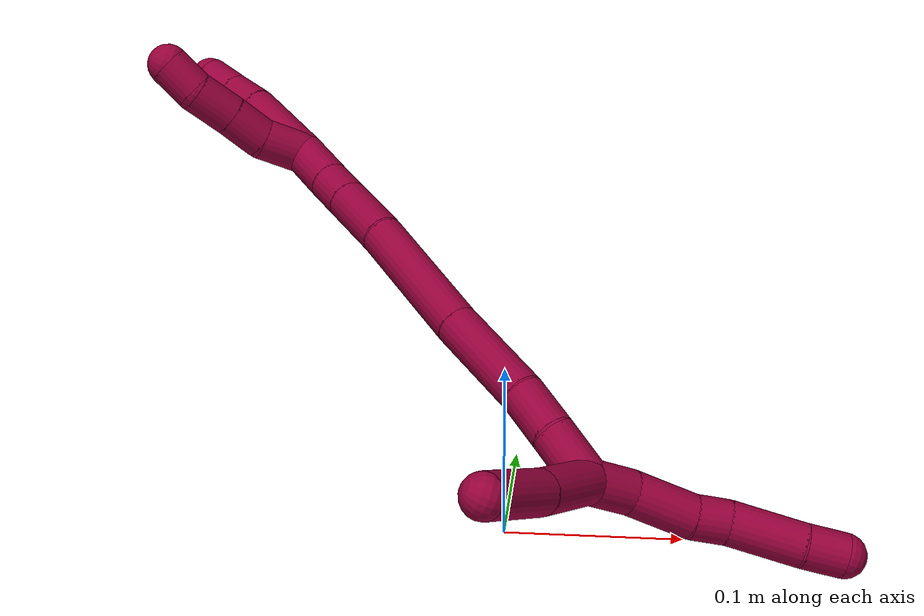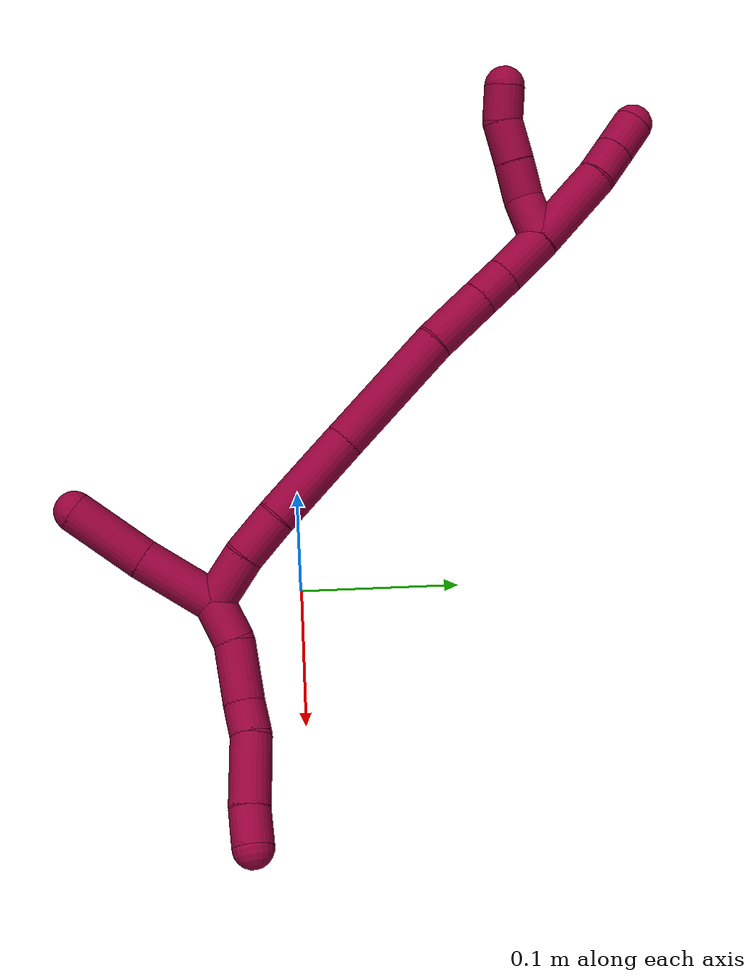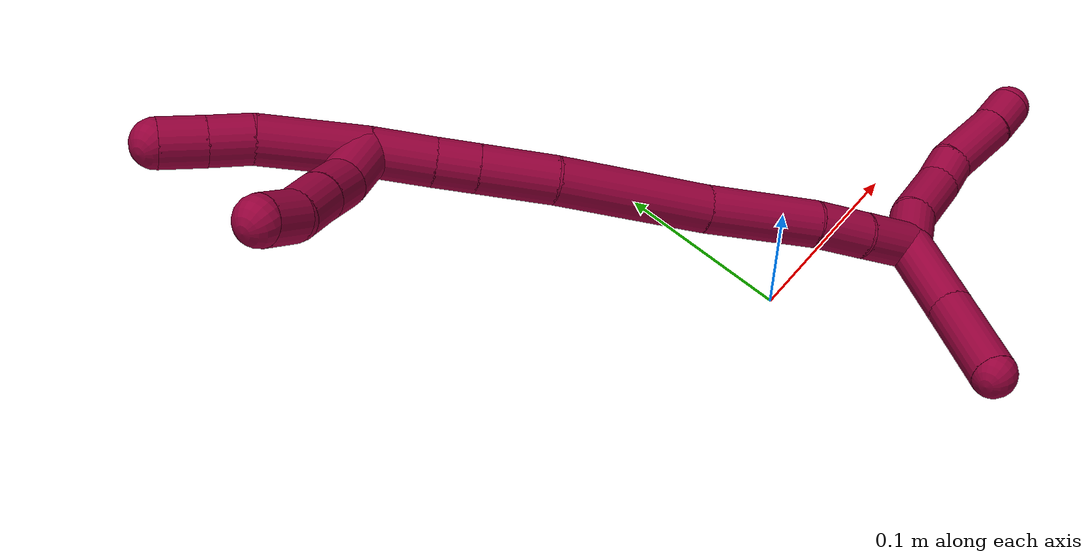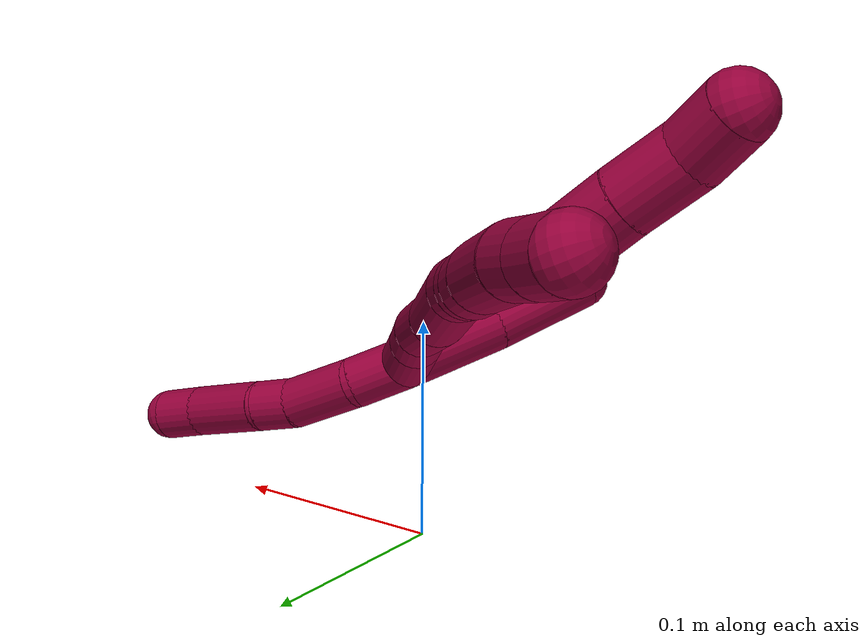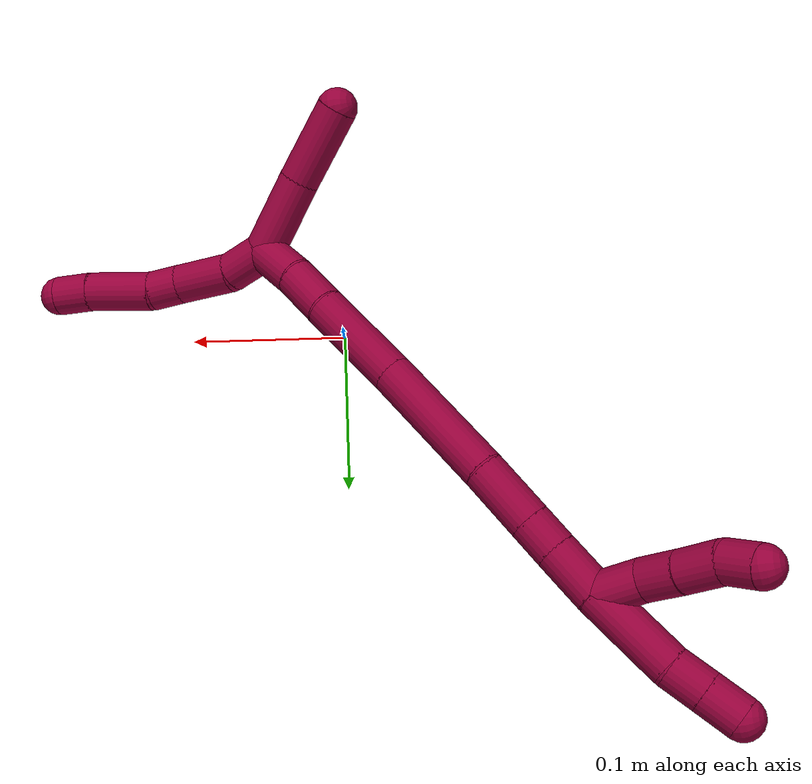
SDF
<sdf version="1.7">
 <world name="default">
  <model name="8">
   <static>0</static>
   <link name="8">
    <collision name="collision-cylinder-e_1_2_8">
     <pose>-0.003685 0.001449 -0.012914 -3.02982 -0.276327 2.37655</pose>
     <geometry><cylinder><radius>0.0125</radius><length>0.027015</length></cylinder></geometry>
     <surface>
      <friction><ode><mu>1.16</mu><mu2>1.16</mu2><slip1>0</slip1><slip2>0</slip2></ode></friction>
      <contact><ode><kp>1e+06</kp><kd>1</kd><max_vel>0</max_vel><min_depth>0.001</min_depth></ode></contact>
     </surface>
    </collision>
    <visual name="visual-cylinder-e_1_2_8">
     <pose>-0.003685 0.001449 -0.012914 -3.02982 -0.276327 2.37655</pose>
     <geometry><cylinder><radius>0.0125</radius><length>0.027015</length></cylinder></geometry>
     <material><ambient>0.584314 0 0.227451 1</ambient></material>
    </visual>
    <collision name="collision-cylinder-e_2_8_9">
     <pose>-0.007169 0.002942 -0.044473 -3.13929 0.010818 -2.72272</pose>
     <geometry><cylinder><radius>0.0125</radius><length>0.037293</length></cylinder></geometry>
     <surface>
      <friction><ode><mu>1.16</mu><mu2>1.16</mu2><slip1>0</slip1><slip2>0</slip2></ode></friction>
      <contact><ode><kp>1e+06</kp><kd>1</kd><max_vel>0</max_vel><min_depth>0.001</min_depth></ode></contact>
     </surface>
    </collision>
    <visual name="visual-cylinder-e_2_8_9">
     <pose>-0.007169 0.002942 -0.044473 -3.13929 0.010818 -2.72272</pose>
     <geometry><cylinder><radius>0.0125</radius><length>0.037293</length></cylinder></geometry>
     <material><ambient>0.584314 0 0.227451 1</ambient></material>
    </visual>
    <collision name="collision-cylinder-e_3_9_10">
     <pose>-0.006478 0.005098 -0.072964 -2.93013 0.048521 -0.449551</pose>
     <geometry><cylinder><radius>0.0125</radius><length>0.020163</length></cylinder></geometry>
     <surface>
      <friction><ode><mu>1.16</mu><mu2>1.16</mu2><slip1>0</slip1><slip2>0</slip2></ode></friction>
      <contact><ode><kp>1e+06</kp><kd>1</kd><max_vel>0</max_vel><min_depth>0.001</min_depth></ode></contact>
     </surface>
    </collision>
    <visual name="visual-cylinder-e_3_9_10">
     <pose>-0.006478 0.005098 -0.072964 -2.93013 0.048521 -0.449551</pose>
     <geometry><cylinder><radius>0.0125</radius><length>0.020163</length></cylinder></geometry>
     <material><ambient>0.584314 0 0.227451 1</ambient></material>
    </visual>
    <collision name="collision-cylinder-e_4_10_11">
     <pose>-0.00092 0.008962 -0.103459 -3.05704 0.239892 -2.46649</pose>
     <geometry><cylinder><radius>0.0125</radius><length>0.042668</length></cylinder></geometry>
     <surface>
      <friction><ode><mu>1.16</mu><mu2>1.16</mu2><slip1>0</slip1><slip2>0</slip2></ode></friction>
      <contact><ode><kp>1e+06</kp><kd>1</kd><max_vel>0</max_vel><min_depth>0.001</min_depth></ode></contact>
     </surface>
    </collision>
    <visual name="visual-cylinder-e_4_10_11">
     <pose>-0.00092 0.008962 -0.103459 -3.05704 0.239892 -2.46649</pose>
     <geometry><cylinder><radius>0.0125</radius><length>0.042668</length></cylinder></geometry>
     <material><ambient>0.584314 0 0.227451 1</ambient></material>
    </visual>
    <collision name="collision-cylinder-e_5_11_6">
     <pose>0.005724 0.012243 -0.135325 -3.00593 0.138224 -1.58956</pose>
     <geometry><cylinder><radius>0.0125</radius><length>0.02286</length></cylinder></geometry>
     <surface>
      <friction><ode><mu>1.16</mu><mu2>1.16</mu2><slip1>0</slip1><slip2>0</slip2></ode></friction>
      <contact><ode><kp>1e+06</kp><kd>1</kd><max_vel>0</max_vel><min_depth>0.001</min_depth></ode></contact>
     </surface>
    </collision>
    <visual name="visual-cylinder-e_5_11_6">
     <pose>0.005724 0.012243 -0.135325 -3.00593 0.138224 -1.58956</pose>
     <geometry><cylinder><radius>0.0125</radius><length>0.02286</length></cylinder></geometry>
     <material><ambient>0.584314 0 0.227451 1</ambient></material>
    </visual>
    <collision name="collision-cylinder-e_1_2_12">
     <pose>0.017351 -0.007128 0.016233 0.413764 0.774639 0.170818</pose>
     <geometry><cylinder><radius>0.0125</radius><length>0.049613</length></cylinder></geometry>
     <surface>
      <friction><ode><mu>1.16</mu><mu2>1.16</mu2><slip1>0</slip1><slip2>0</slip2></ode></friction>
      <contact><ode><kp>1e+06</kp><kd>1</kd><max_vel>0</max_vel><min_depth>0.001</min_depth></ode></contact>
     </surface>
    </collision>
    <visual name="visual-cylinder-e_1_2_12">
     <pose>0.017351 -0.007128 0.016233 0.413764 0.774639 0.170818</pose>
     <geometry><cylinder><radius>0.0125</radius><length>0.049613</length></cylinder></geometry>
     <material><ambient>0.584314 0 0.227451 1</ambient></material>
    </visual>
    <collision name="collision-cylinder-e_2_12_5">
     <pose>0.051933 -0.019733 0.05001 0.302583 0.753154 0.120432</pose>
     <geometry><cylinder><radius>0.0125</radius><length>0.050387</length></cylinder></geometry>
     <surface>
      <friction><ode><mu>1.16</mu><mu2>1.16</mu2><slip1>0</slip1><slip2>0</slip2></ode></friction>
      <contact><ode><kp>1e+06</kp><kd>1</kd><max_vel>0</max_vel><min_depth>0.001</min_depth></ode></contact>
     </surface>
    </collision>
    <visual name="visual-cylinder-e_2_12_5">
     <pose>0.051933 -0.019733 0.05001 0.302583 0.753154 0.120432</pose>
     <geometry><cylinder><radius>0.0125</radius><length>0.050387</length></cylinder></geometry>
     <material><ambient>0.584314 0 0.227451 1</ambient></material>
    </visual>
    <collision name="collision-cylinder-e_1_2_13">
     <pose>-0.008269 0.008353 0.011526 -0.627127 -0.526261 0.174254</pose>
     <geometry><cylinder><radius>0.0125</radius><length>0.032924</length></cylinder></geometry>
     <surface>
      <friction><ode><mu>1.16</mu><mu2>1.16</mu2><slip1>0</slip1><slip2>0</slip2></ode></friction>
      <contact><ode><kp>1e+06</kp><kd>1</kd><max_vel>0</max_vel><min_depth>0.001</min_depth></ode></contact>
     </surface>
    </collision>
    <visual name="visual-cylinder-e_1_2_13">
     <pose>-0.008269 0.008353 0.011526 -0.627127 -0.526261 0.174254</pose>
     <geometry><cylinder><radius>0.0125</radius><length>0.032924</length></cylinder></geometry>
     <material><ambient>0.584314 0 0.227451 1</ambient></material>
    </visual>
    <collision name="collision-cylinder-e_2_13_14">
     <pose>-0.025774 0.023775 0.032451 -0.644874 -0.665763 0.230007</pose>
     <geometry><cylinder><radius>0.0125</radius><length>0.029908</length></cylinder></geometry>
     <surface>
      <friction><ode><mu>1.16</mu><mu2>1.16</mu2><slip1>0</slip1><slip2>0</slip2></ode></friction>
      <contact><ode><kp>1e+06</kp><kd>1</kd><max_vel>0</max_vel><min_depth>0.001</min_depth></ode></contact>
     </surface>
    </collision>
    <visual name="visual-cylinder-e_2_13_14">
     <pose>-0.025774 0.023775 0.032451 -0.644874 -0.665763 0.230007</pose>
     <geometry><cylinder><radius>0.0125</radius><length>0.029908</length></cylinder></geometry>
     <material><ambient>0.584314 0 0.227451 1</ambient></material>
    </visual>
    <collision name="collision-cylinder-e_3_14_15">
     <pose>-0.056282 0.042439 0.061061 -0.542983 -0.758696 0.22104</pose>
     <geometry><cylinder><radius>0.0125</radius><length>0.061838</length></cylinder></geometry>
     <surface>
      <friction><ode><mu>1.16</mu><mu2>1.16</mu2><slip1>0</slip1><slip2>0</slip2></ode></friction>
      <contact><ode><kp>1e+06</kp><kd>1</kd><max_vel>0</max_vel><min_depth>0.001</min_depth></ode></contact>
     </surface>
    </collision>
    <visual name="visual-cylinder-e_3_14_15">
     <pose>-0.056282 0.042439 0.061061 -0.542983 -0.758696 0.22104</pose>
     <geometry><cylinder><radius>0.0125</radius><length>0.061838</length></cylinder></geometry>
     <material><ambient>0.584314 0 0.227451 1</ambient></material>
    </visual>
    <collision name="collision-cylinder-e_4_15_16">
     <pose>-0.104999 0.071311 0.10513 -0.607433 -0.736433 0.240669</pose>
     <geometry><cylinder><radius>0.0125</radius><length>0.081724</length></cylinder></geometry>
     <surface>
      <friction><ode><mu>1.16</mu><mu2>1.16</mu2><slip1>0</slip1><slip2>0</slip2></ode></friction>
      <contact><ode><kp>1e+06</kp><kd>1</kd><max_vel>0</max_vel><min_depth>0.001</min_depth></ode></contact>
     </surface>
    </collision>
    <visual name="visual-cylinder-e_4_15_16">
     <pose>-0.104999 0.071311 0.10513 -0.607433 -0.736433 0.240669</pose>
     <geometry><cylinder><radius>0.0125</radius><length>0.081724</length></cylinder></geometry>
     <material><ambient>0.584314 0 0.227451 1</ambient></material>
    </visual>
    <collision name="collision-cylinder-e_5_16_17">
     <pose>-0.147218 0.095513 0.141142 -0.555455 -0.844382 0.254745</pose>
     <geometry><cylinder><radius>0.0125</radius><length>0.039529</length></cylinder></geometry>
     <surface>
      <friction><ode><mu>1.16</mu><mu2>1.16</mu2><slip1>0</slip1><slip2>0</slip2></ode></friction>
      <contact><ode><kp>1e+06</kp><kd>1</kd><max_vel>0</max_vel><min_depth>0.001</min_depth></ode></contact>
     </surface>
    </collision>
    <visual name="visual-cylinder-e_5_16_17">
     <pose>-0.147218 0.095513 0.141142 -0.555455 -0.844382 0.254745</pose>
     <geometry><cylinder><radius>0.0125</radius><length>0.039529</length></cylinder></geometry>
     <material><ambient>0.584314 0 0.227451 1</ambient></material>
    </visual>
    <collision name="collision-cylinder-e_6_17_18">
     <pose>-0.170169 0.106249 0.158436 -0.555812 -0.846798 0.255731</pose>
     <geometry><cylinder><radius>0.0125</radius><length>0.021827</length></cylinder></geometry>
     <surface>
      <friction><ode><mu>1.16</mu><mu2>1.16</mu2><slip1>0</slip1><slip2>0</slip2></ode></friction>
      <contact><ode><kp>1e+06</kp><kd>1</kd><max_vel>0</max_vel><min_depth>0.001</min_depth></ode></contact>
     </surface>
    </collision>
    <visual name="visual-cylinder-e_6_17_18">
     <pose>-0.170169 0.106249 0.158436 -0.555812 -0.846798 0.255731</pose>
     <geometry><cylinder><radius>0.0125</radius><length>0.021827</length></cylinder></geometry>
     <material><ambient>0.584314 0 0.227451 1</ambient></material>
    </visual>
    <collision name="collision-cylinder-e_7_18_1">
     <pose>-0.190004 0.116093 0.173944 -0.571934 -0.808183 0.250153</pose>
     <geometry><cylinder><radius>0.0125</radius><length>0.032251</length></cylinder></geometry>
     <surface>
      <friction><ode><mu>1.16</mu><mu2>1.16</mu2><slip1>0</slip1><slip2>0</slip2></ode></friction>
      <contact><ode><kp>1e+06</kp><kd>1</kd><max_vel>0</max_vel><min_depth>0.001</min_depth></ode></contact>
     </surface>
    </collision>
    <visual name="visual-cylinder-e_7_18_1">
     <pose>-0.190004 0.116093 0.173944 -0.571934 -0.808183 0.250153</pose>
     <geometry><cylinder><radius>0.0125</radius><length>0.032251</length></cylinder></geometry>
     <material><ambient>0.584314 0 0.227451 1</ambient></material>
    </visual>
    <collision name="collision-cylinder-e_1_1_19">
     <pose>-0.199625 0.121056 0.197232 0.076497 0.145039 0.00556</pose>
     <geometry><cylinder><radius>0.0125</radius><length>0.028219</length></cylinder></geometry>
     <surface>
      <friction><ode><mu>1.16</mu><mu2>1.16</mu2><slip1>0</slip1><slip2>0</slip2></ode></friction>
      <contact><ode><kp>1e+06</kp><kd>1</kd><max_vel>0</max_vel><min_depth>0.001</min_depth></ode></contact>
     </surface>
    </collision>
    <visual name="visual-cylinder-e_1_1_19">
     <pose>-0.199625 0.121056 0.197232 0.076497 0.145039 0.00556</pose>
     <geometry><cylinder><radius>0.0125</radius><length>0.028219</length></cylinder></geometry>
     <material><ambient>0.584314 0 0.227451 1</ambient></material>
    </visual>
    <collision name="collision-cylinder-e_2_19_20">
     <pose>-0.195222 0.122549 0.222697 -0.218232 0.197216 -0.021675</pose>
     <geometry><cylinder><radius>0.0125</radius><length>0.024119</length></cylinder></geometry>
     <surface>
      <friction><ode><mu>1.16</mu><mu2>1.16</mu2><slip1>0</slip1><slip2>0</slip2></ode></friction>
      <contact><ode><kp>1e+06</kp><kd>1</kd><max_vel>0</max_vel><min_depth>0.001</min_depth></ode></contact>
     </surface>
    </collision>
    <visual name="visual-cylinder-e_2_19_20">
     <pose>-0.195222 0.122549 0.222697 -0.218232 0.197216 -0.021675</pose>
     <geometry><cylinder><radius>0.0125</radius><length>0.024119</length></cylinder></geometry>
     <material><ambient>0.584314 0 0.227451 1</ambient></material>
    </visual>
    <collision name="collision-cylinder-e_3_20_21">
     <pose>-0.190242 0.127307 0.246654 -0.175301 0.204729 -0.018053</pose>
     <geometry><cylinder><radius>0.0125</radius><length>0.025746</length></cylinder></geometry>
     <surface>
      <friction><ode><mu>1.16</mu><mu2>1.16</mu2><slip1>0</slip1><slip2>0</slip2></ode></friction>
      <contact><ode><kp>1e+06</kp><kd>1</kd><max_vel>0</max_vel><min_depth>0.001</min_depth></ode></contact>
     </surface>
    </collision>
    <visual name="visual-cylinder-e_3_20_21">
     <pose>-0.190242 0.127307 0.246654 -0.175301 0.204729 -0.018053</pose>
     <geometry><cylinder><radius>0.0125</radius><length>0.025746</length></cylinder></geometry>
     <material><ambient>0.584314 0 0.227451 1</ambient></material>
    </visual>
    <collision name="collision-cylinder-e_4_21_4">
     <pose>-0.18816 0.13375 0.269153 -0.398219 -0.048812 0.009851</pose>
     <geometry><cylinder><radius>0.0125</radius><length>0.021916</length></cylinder></geometry>
     <surface>
      <friction><ode><mu>1.16</mu><mu2>1.16</mu2><slip1>0</slip1><slip2>0</slip2></ode></friction>
      <contact><ode><kp>1e+06</kp><kd>1</kd><max_vel>0</max_vel><min_depth>0.001</min_depth></ode></contact>
     </surface>
    </collision>
    <visual name="visual-cylinder-e_4_21_4">
     <pose>-0.18816 0.13375 0.269153 -0.398219 -0.048812 0.009851</pose>
     <geometry><cylinder><radius>0.0125</radius><length>0.021916</length></cylinder></geometry>
     <material><ambient>0.584314 0 0.227451 1</ambient></material>
    </visual>
    <collision name="collision-cylinder-e_1_1_22">
     <pose>-0.220824 0.131516 0.200557 -0.498726 -0.773087 0.206568</pose>
     <geometry><cylinder><radius>0.0125</radius><length>0.054873</length></cylinder></geometry>
     <surface>
      <friction><ode><mu>1.16</mu><mu2>1.16</mu2><slip1>0</slip1><slip2>0</slip2></ode></friction>
      <contact><ode><kp>1e+06</kp><kd>1</kd><max_vel>0</max_vel><min_depth>0.001</min_depth></ode></contact>
     </surface>
    </collision>
    <visual name="visual-cylinder-e_1_1_22">
     <pose>-0.220824 0.131516 0.200557 -0.498726 -0.773087 0.206568</pose>
     <geometry><cylinder><radius>0.0125</radius><length>0.054873</length></cylinder></geometry>
     <material><ambient>0.584314 0 0.227451 1</ambient></material>
    </visual>
    <collision name="collision-cylinder-e_2_22_23">
     <pose>-0.247295 0.14323 0.225693 -0.286104 -0.72657 0.109403</pose>
     <geometry><cylinder><radius>0.0125</radius><length>0.022008</length></cylinder></geometry>
     <surface>
      <friction><ode><mu>1.16</mu><mu2>1.16</mu2><slip1>0</slip1><slip2>0</slip2></ode></friction>
      <contact><ode><kp>1e+06</kp><kd>1</kd><max_vel>0</max_vel><min_depth>0.001</min_depth></ode></contact>
     </surface>
    </collision>
    <visual name="visual-cylinder-e_2_22_23">
     <pose>-0.247295 0.14323 0.225693 -0.286104 -0.72657 0.109403</pose>
     <geometry><cylinder><radius>0.0125</radius><length>0.022008</length></cylinder></geometry>
     <material><ambient>0.584314 0 0.227451 1</ambient></material>
    </visual>
    <collision name="collision-cylinder-e_3_23_3">
     <pose>-0.262169 0.148244 0.2419 -0.313191 -0.713346 0.117526</pose>
     <geometry><cylinder><radius>0.0125</radius><length>0.023119</length></cylinder></geometry>
     <surface>
      <friction><ode><mu>1.16</mu><mu2>1.16</mu2><slip1>0</slip1><slip2>0</slip2></ode></friction>
      <contact><ode><kp>1e+06</kp><kd>1</kd><max_vel>0</max_vel><min_depth>0.001</min_depth></ode></contact>
     </surface>
    </collision>
    <visual name="visual-cylinder-e_3_23_3">
     <pose>-0.262169 0.148244 0.2419 -0.313191 -0.713346 0.117526</pose>
     <geometry><cylinder><radius>0.0125</radius><length>0.023119</length></cylinder></geometry>
     <material><ambient>0.584314 0 0.227451 1</ambient></material>
    </visual>
    <collision name="collision-sphere-3">
     <pose>-0.269733 0.150937 0.250216 0 -0 0</pose>
     <geometry><sphere><radius>0.0125</radius></sphere></geometry>
     <surface>
      <friction><ode><mu>1.16</mu><mu2>1.16</mu2><slip1>0</slip1><slip2>0</slip2></ode></friction>
      <contact><ode><kp>1e+06</kp><kd>1</kd><max_vel>0</max_vel><min_depth>0.001</min_depth></ode></contact>
     </surface>
    </collision>
    <visual name="visual-sphere-3">
     <pose>-0.269733 0.150937 0.250216 0 -0 0</pose>
     <geometry><sphere><radius>0.0125</radius></sphere></geometry>
     <material><ambient>0.584314 0 0.227451 1</ambient></material>
    </visual>
    <collision name="collision-sphere-23">
     <pose>-0.254605 0.145551 0.233584 0 -0 0</pose>
     <geometry><sphere><radius>0.0125</radius></sphere></geometry>
     <surface>
      <friction><ode><mu>1.16</mu><mu2>1.16</mu2><slip1>0</slip1><slip2>0</slip2></ode></friction>
      <contact><ode><kp>1e+06</kp><kd>1</kd><max_vel>0</max_vel><min_depth>0.001</min_depth></ode></contact>
     </surface>
    </collision>
    <visual name="visual-sphere-23">
     <pose>-0.254605 0.145551 0.233584 0 -0 0</pose>
     <geometry><sphere><radius>0.0125</radius></sphere></geometry>
     <material><ambient>0.584314 0 0.227451 1</ambient></material>
    </visual>
    <collision name="collision-sphere-22">
     <pose>-0.239984 0.140908 0.217803 0 -0 0</pose>
     <geometry><sphere><radius>0.0125</radius></sphere></geometry>
     <surface>
      <friction><ode><mu>1.16</mu><mu2>1.16</mu2><slip1>0</slip1><slip2>0</slip2></ode></friction>
      <contact><ode><kp>1e+06</kp><kd>1</kd><max_vel>0</max_vel><min_depth>0.001</min_depth></ode></contact>
     </surface>
    </collision>
    <visual name="visual-sphere-22">
     <pose>-0.239984 0.140908 0.217803 0 -0 0</pose>
     <geometry><sphere><radius>0.0125</radius></sphere></geometry>
     <material><ambient>0.584314 0 0.227451 1</ambient></material>
    </visual>
    <collision name="collision-sphere-4">
     <pose>-0.188695 0.137994 0.279242 0 -0 0</pose>
     <geometry><sphere><radius>0.0125</radius></sphere></geometry>
     <surface>
      <friction><ode><mu>1.16</mu><mu2>1.16</mu2><slip1>0</slip1><slip2>0</slip2></ode></friction>
      <contact><ode><kp>1e+06</kp><kd>1</kd><max_vel>0</max_vel><min_depth>0.001</min_depth></ode></contact>
     </surface>
    </collision>
    <visual name="visual-sphere-4">
     <pose>-0.188695 0.137994 0.279242 0 -0 0</pose>
     <geometry><sphere><radius>0.0125</radius></sphere></geometry>
     <material><ambient>0.584314 0 0.227451 1</ambient></material>
    </visual>
    <collision name="collision-sphere-21">
     <pose>-0.187625 0.129506 0.259065 0 -0 0</pose>
     <geometry><sphere><radius>0.0125</radius></sphere></geometry>
     <surface>
      <friction><ode><mu>1.16</mu><mu2>1.16</mu2><slip1>0</slip1><slip2>0</slip2></ode></friction>
      <contact><ode><kp>1e+06</kp><kd>1</kd><max_vel>0</max_vel><min_depth>0.001</min_depth></ode></contact>
     </surface>
    </collision>
    <visual name="visual-sphere-21">
     <pose>-0.187625 0.129506 0.259065 0 -0 0</pose>
     <geometry><sphere><radius>0.0125</radius></sphere></geometry>
     <material><ambient>0.584314 0 0.227451 1</ambient></material>
    </visual>
    <collision name="collision-sphere-20">
     <pose>-0.19286 0.125109 0.234242 0 -0 0</pose>
     <geometry><sphere><radius>0.0125</radius></sphere></geometry>
     <surface>
      <friction><ode><mu>1.16</mu><mu2>1.16</mu2><slip1>0</slip1><slip2>0</slip2></ode></friction>
      <contact><ode><kp>1e+06</kp><kd>1</kd><max_vel>0</max_vel><min_depth>0.001</min_depth></ode></contact>
     </surface>
    </collision>
    <visual name="visual-sphere-20">
     <pose>-0.19286 0.125109 0.234242 0 -0 0</pose>
     <geometry><sphere><radius>0.0125</radius></sphere></geometry>
     <material><ambient>0.584314 0 0.227451 1</ambient></material>
    </visual>
    <collision name="collision-sphere-6">
     <pose>0.007299 0.013774 -0.146542 0 -0 0</pose>
     <geometry><sphere><radius>0.0125</radius></sphere></geometry>
     <surface>
      <friction><ode><mu>1.16</mu><mu2>1.16</mu2><slip1>0</slip1><slip2>0</slip2></ode></friction>
      <contact><ode><kp>1e+06</kp><kd>1</kd><max_vel>0</max_vel><min_depth>0.001</min_depth></ode></contact>
     </surface>
    </collision>
    <visual name="visual-sphere-6">
     <pose>0.007299 0.013774 -0.146542 0 -0 0</pose>
     <geometry><sphere><radius>0.0125</radius></sphere></geometry>
     <material><ambient>0.584314 0 0.227451 1</ambient></material>
    </visual>
    <collision name="collision-sphere-11">
     <pose>0.004149 0.010712 -0.124108 0 -0 0</pose>
     <geometry><sphere><radius>0.0125</radius></sphere></geometry>
     <surface>
      <friction><ode><mu>1.16</mu><mu2>1.16</mu2><slip1>0</slip1><slip2>0</slip2></ode></friction>
      <contact><ode><kp>1e+06</kp><kd>1</kd><max_vel>0</max_vel><min_depth>0.001</min_depth></ode></contact>
     </surface>
    </collision>
    <visual name="visual-sphere-11">
     <pose>0.004149 0.010712 -0.124108 0 -0 0</pose>
     <geometry><sphere><radius>0.0125</radius></sphere></geometry>
     <material><ambient>0.584314 0 0.227451 1</ambient></material>
    </visual>
    <collision name="collision-sphere-10">
     <pose>-0.005989 0.007212 -0.08281 0 -0 0</pose>
     <geometry><sphere><radius>0.0125</radius></sphere></geometry>
     <surface>
      <friction><ode><mu>1.16</mu><mu2>1.16</mu2><slip1>0</slip1><slip2>0</slip2></ode></friction>
      <contact><ode><kp>1e+06</kp><kd>1</kd><max_vel>0</max_vel><min_depth>0.001</min_depth></ode></contact>
     </surface>
    </collision>
    <visual name="visual-sphere-10">
     <pose>-0.005989 0.007212 -0.08281 0 -0 0</pose>
     <geometry><sphere><radius>0.0125</radius></sphere></geometry>
     <material><ambient>0.584314 0 0.227451 1</ambient></material>
    </visual>
    <collision name="collision-sphere-9">
     <pose>-0.006967 0.002985 -0.063119 0 -0 0</pose>
     <geometry><sphere><radius>0.0125</radius></sphere></geometry>
     <surface>
      <friction><ode><mu>1.16</mu><mu2>1.16</mu2><slip1>0</slip1><slip2>0</slip2></ode></friction>
      <contact><ode><kp>1e+06</kp><kd>1</kd><max_vel>0</max_vel><min_depth>0.001</min_depth></ode></contact>
     </surface>
    </collision>
    <visual name="visual-sphere-9">
     <pose>-0.006967 0.002985 -0.063119 0 -0 0</pose>
     <geometry><sphere><radius>0.0125</radius></sphere></geometry>
     <material><ambient>0.584314 0 0.227451 1</ambient></material>
    </visual>
    <collision name="collision-sphere-2">
     <geometry><sphere><radius>0.0125</radius></sphere></geometry>
     <surface>
      <friction><ode><mu>1.16</mu><mu2>1.16</mu2><slip1>0</slip1><slip2>0</slip2></ode></friction>
      <contact><ode><kp>1e+06</kp><kd>1</kd><max_vel>0</max_vel><min_depth>0.001</min_depth></ode></contact>
     </surface>
    </collision>
    <visual name="visual-sphere-2">
     <geometry><sphere><radius>0.0125</radius></sphere></geometry>
     <material><ambient>0.584314 0 0.227451 1</ambient></material>
    </visual>
    <collision name="collision-sphere-19">
     <pose>-0.197585 0.119989 0.211152 0 -0 0</pose>
     <geometry><sphere><radius>0.0125</radius></sphere></geometry>
     <surface>
      <friction><ode><mu>1.16</mu><mu2>1.16</mu2><slip1>0</slip1><slip2>0</slip2></ode></friction>
      <contact><ode><kp>1e+06</kp><kd>1</kd><max_vel>0</max_vel><min_depth>0.001</min_depth></ode></contact>
     </surface>
    </collision>
    <visual name="visual-sphere-19">
     <pose>-0.197585 0.119989 0.211152 0 -0 0</pose>
     <geometry><sphere><radius>0.0125</radius></sphere></geometry>
     <material><ambient>0.584314 0 0.227451 1</ambient></material>
    </visual>
    <collision name="collision-sphere-8">
     <pose>-0.00737 0.002899 -0.025828 0 -0 0</pose>
     <geometry><sphere><radius>0.0125</radius></sphere></geometry>
     <surface>
      <friction><ode><mu>1.16</mu><mu2>1.16</mu2><slip1>0</slip1><slip2>0</slip2></ode></friction>
      <contact><ode><kp>1e+06</kp><kd>1</kd><max_vel>0</max_vel><min_depth>0.001</min_depth></ode></contact>
     </surface>
    </collision>
    <visual name="visual-sphere-8">
     <pose>-0.00737 0.002899 -0.025828 0 -0 0</pose>
     <geometry><sphere><radius>0.0125</radius></sphere></geometry>
     <material><ambient>0.584314 0 0.227451 1</ambient></material>
    </visual>
    <collision name="collision-sphere-12">
     <pose>0.034702 -0.014256 0.032465 0 -0 0</pose>
     <geometry><sphere><radius>0.0125</radius></sphere></geometry>
     <surface>
      <friction><ode><mu>1.16</mu><mu2>1.16</mu2><slip1>0</slip1><slip2>0</slip2></ode></friction>
      <contact><ode><kp>1e+06</kp><kd>1</kd><max_vel>0</max_vel><min_depth>0.001</min_depth></ode></contact>
     </surface>
    </collision>
    <visual name="visual-sphere-12">
     <pose>0.034702 -0.014256 0.032465 0 -0 0</pose>
     <geometry><sphere><radius>0.0125</radius></sphere></geometry>
     <material><ambient>0.584314 0 0.227451 1</ambient></material>
    </visual>
    <collision name="collision-sphere-5">
     <pose>0.069164 -0.02521 0.067554 0 -0 0</pose>
     <geometry><sphere><radius>0.0125</radius></sphere></geometry>
     <surface>
      <friction><ode><mu>1.16</mu><mu2>1.16</mu2><slip1>0</slip1><slip2>0</slip2></ode></friction>
      <contact><ode><kp>1e+06</kp><kd>1</kd><max_vel>0</max_vel><min_depth>0.001</min_depth></ode></contact>
     </surface>
    </collision>
    <visual name="visual-sphere-5">
     <pose>0.069164 -0.02521 0.067554 0 -0 0</pose>
     <geometry><sphere><radius>0.0125</radius></sphere></geometry>
     <material><ambient>0.584314 0 0.227451 1</ambient></material>
    </visual>
    <collision name="collision-sphere-13">
     <pose>-0.016538 0.016706 0.023052 0 -0 0</pose>
     <geometry><sphere><radius>0.0125</radius></sphere></geometry>
     <surface>
      <friction><ode><mu>1.16</mu><mu2>1.16</mu2><slip1>0</slip1><slip2>0</slip2></ode></friction>
      <contact><ode><kp>1e+06</kp><kd>1</kd><max_vel>0</max_vel><min_depth>0.001</min_depth></ode></contact>
     </surface>
    </collision>
    <visual name="visual-sphere-13">
     <pose>-0.016538 0.016706 0.023052 0 -0 0</pose>
     <geometry><sphere><radius>0.0125</radius></sphere></geometry>
     <material><ambient>0.584314 0 0.227451 1</ambient></material>
    </visual>
    <collision name="collision-sphere-14">
     <pose>-0.035011 0.030845 0.041849 0 -0 0</pose>
     <geometry><sphere><radius>0.0125</radius></sphere></geometry>
     <surface>
      <friction><ode><mu>1.16</mu><mu2>1.16</mu2><slip1>0</slip1><slip2>0</slip2></ode></friction>
      <contact><ode><kp>1e+06</kp><kd>1</kd><max_vel>0</max_vel><min_depth>0.001</min_depth></ode></contact>
     </surface>
    </collision>
    <visual name="visual-sphere-14">
     <pose>-0.035011 0.030845 0.041849 0 -0 0</pose>
     <geometry><sphere><radius>0.0125</radius></sphere></geometry>
     <material><ambient>0.584314 0 0.227451 1</ambient></material>
    </visual>
    <collision name="collision-sphere-15">
     <pose>-0.077554 0.054033 0.080272 0 -0 0</pose>
     <geometry><sphere><radius>0.0125</radius></sphere></geometry>
     <surface>
      <friction><ode><mu>1.16</mu><mu2>1.16</mu2><slip1>0</slip1><slip2>0</slip2></ode></friction>
      <contact><ode><kp>1e+06</kp><kd>1</kd><max_vel>0</max_vel><min_depth>0.001</min_depth></ode></contact>
     </surface>
    </collision>
    <visual name="visual-sphere-15">
     <pose>-0.077554 0.054033 0.080272 0 -0 0</pose>
     <geometry><sphere><radius>0.0125</radius></sphere></geometry>
     <material><ambient>0.584314 0 0.227451 1</ambient></material>
    </visual>
    <collision name="collision-sphere-16">
     <pose>-0.132443 0.08859 0.129988 0 -0 0</pose>
     <geometry><sphere><radius>0.0125</radius></sphere></geometry>
     <surface>
      <friction><ode><mu>1.16</mu><mu2>1.16</mu2><slip1>0</slip1><slip2>0</slip2></ode></friction>
      <contact><ode><kp>1e+06</kp><kd>1</kd><max_vel>0</max_vel><min_depth>0.001</min_depth></ode></contact>
     </surface>
    </collision>
    <visual name="visual-sphere-16">
     <pose>-0.132443 0.08859 0.129988 0 -0 0</pose>
     <geometry><sphere><radius>0.0125</radius></sphere></geometry>
     <material><ambient>0.584314 0 0.227451 1</ambient></material>
    </visual>
    <collision name="collision-sphere-17">
     <pose>-0.161993 0.102435 0.152296 0 -0 0</pose>
     <geometry><sphere><radius>0.0125</radius></sphere></geometry>
     <surface>
      <friction><ode><mu>1.16</mu><mu2>1.16</mu2><slip1>0</slip1><slip2>0</slip2></ode></friction>
      <contact><ode><kp>1e+06</kp><kd>1</kd><max_vel>0</max_vel><min_depth>0.001</min_depth></ode></contact>
     </surface>
    </collision>
    <visual name="visual-sphere-17">
     <pose>-0.161993 0.102435 0.152296 0 -0 0</pose>
     <geometry><sphere><radius>0.0125</radius></sphere></geometry>
     <material><ambient>0.584314 0 0.227451 1</ambient></material>
    </visual>
    <collision name="collision-sphere-18">
     <pose>-0.178345 0.110063 0.164577 0 -0 0</pose>
     <geometry><sphere><radius>0.0125</radius></sphere></geometry>
     <surface>
      <friction><ode><mu>1.16</mu><mu2>1.16</mu2><slip1>0</slip1><slip2>0</slip2></ode></friction>
      <contact><ode><kp>1e+06</kp><kd>1</kd><max_vel>0</max_vel><min_depth>0.001</min_depth></ode></contact>
     </surface>
    </collision>
    <visual name="visual-sphere-18">
     <pose>-0.178345 0.110063 0.164577 0 -0 0</pose>
     <geometry><sphere><radius>0.0125</radius></sphere></geometry>
     <material><ambient>0.584314 0 0.227451 1</ambient></material>
    </visual>
    <collision name="collision-sphere-1">
     <pose>-0.201664 0.122123 0.183311 0 -0 0</pose>
     <geometry><sphere><radius>0.0125</radius></sphere></geometry>
     <surface>
      <friction><ode><mu>1.16</mu><mu2>1.16</mu2><slip1>0</slip1><slip2>0</slip2></ode></friction>
      <contact><ode><kp>1e+06</kp><kd>1</kd><max_vel>0</max_vel><min_depth>0.001</min_depth></ode></contact>
     </surface>
    </collision>
    <visual name="visual-sphere-1">
     <pose>-0.201664 0.122123 0.183311 0 -0 0</pose>
     <geometry><sphere><radius>0.0125</radius></sphere></geometry>
     <material><ambient>0.584314 0 0.227451 1</ambient></material>
    </visual>
    <inertial>
     <pose>-0.091571 0.060293 0.087272 0 -0 0</pose>
     <mass>0.75</mass>
     <inertia><ixx>9.2e-05</ixx><ixy>0</ixy><ixz>0</ixz><iyy>0.00017</iyy><iyz>0</iyz><izz>3.6e-05</izz></inertia>
    </inertial>
   </link>
   <pose>0.048112 -0.051926 0.059926 1.10071 -0.34492 -1.24696</pose>
  </model>
 </world>
</sdf>
